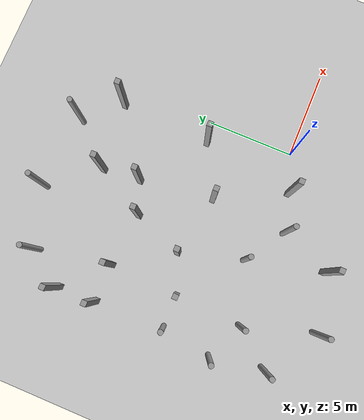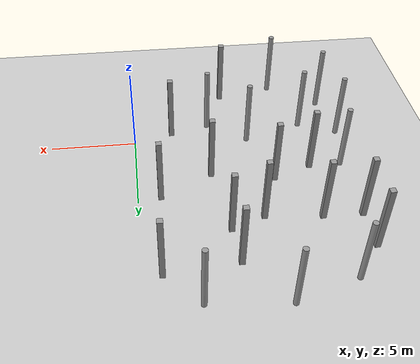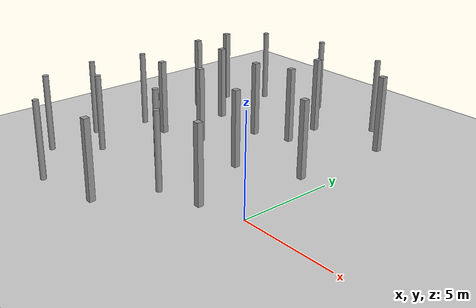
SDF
<sdf version="1.6">
 <world name="default">
  <model name="ground_plane">
   <static>1</static>
   <link name="link">
    <collision name="collision">
     <geometry><plane><normal>0 0 1</normal><size>100 100</size></plane></geometry>
    </collision>
    <visual name="visual">
     <cast_shadows>0</cast_shadows>
     <geometry><plane><normal>0 0 1</normal><size>100 100</size></plane></geometry>
     <material>
      <script><uri>file://media/materials/scripts/gazebo.material</uri><name>Gazebo/Gray</name></script>
     </material>
    </visual>
   </link>
  </model>
  <model name="unit_box">
   <link name="link">
    <inertial>
     <mass>1000</mass>
     <inertia><ixx>166.667</ixx><ixy>0</ixy><ixz>0</ixz><iyy>166.667</iyy><iyz>0</iyz><izz>166.667</izz></inertia>
    </inertial>
    <visual name="visual">
     <geometry><box><size>0.3 0.3 4</size></box></geometry>
     <material>
      <script><name>Gazebo/Grey</name><uri>file://media/materials/scripts/gazebo.material</uri></script>
      <shader type="vertex"><normal_map>__default__</normal_map></shader>
      <ambient>0.3 0.3 0.3 1</ambient>
      <diffuse>0.7 0.7 0.7 1</diffuse>
      <specular>0.01 0.01 0.01 1</specular>
      <emissive>0 0 0 1</emissive>
     </material>
    </visual>
    <collision name="collision">
     <geometry><box><size>0.3 0.3 4</size></box></geometry>
     <surface>
      <friction>
       <ode><mu>1</mu><mu2>1</mu2><fdir1>0 0 0</fdir1><slip1>0</slip1><slip2>0</slip2></ode>
       <torsional>
        <coefficient>1</coefficient>
        <patch_radius>0</patch_radius>
        <surface_radius>0</surface_radius>
        <use_patch_radius>1</use_patch_radius>
        <ode><slip>0</slip></ode>
       </torsional>
      </friction>
      <bounce><restitution_coefficient>0</restitution_coefficient><threshold>1e+06</threshold></bounce>
      <contact>
       <collide_without_contact>0</collide_without_contact>
       <collide_without_contact_bitmask>1</collide_without_contact_bitmask>
       <collide_bitmask>1</collide_bitmask>
       <ode>
        <soft_cfm>0</soft_cfm>
        <soft_erp>0.2</soft_erp>
        <kp>1e+13</kp>
        <kd>1</kd>
        <max_vel>0.01</max_vel>
        <min_depth>0</min_depth>
       </ode>
       <bullet>
        <split_impulse>1</split_impulse>
        <split_impulse_penetration_threshold>-0.01</split_impulse_penetration_threshold>
        <soft_cfm>0</soft_cfm>
        <soft_erp>0.2</soft_erp>
        <kp>1e+13</kp>
        <kd>1</kd>
       </bullet>
      </contact>
     </surface>
    </collision>
   </link>
   <static>0</static>
   <pose>-1.2673 4.71525 2 -9e-06 8e-06 -0.004085</pose>
  </model>
  <model name="unit_box_clone">
   <link name="link">
    <inertial>
     <mass>1000</mass>
     <inertia><ixx>166.667</ixx><ixy>0</ixy><ixz>0</ixz><iyy>166.667</iyy><iyz>0</iyz><izz>166.667</izz></inertia>
    </inertial>
    <visual name="visual">
     <geometry><box><size>0.3 0.3 4</size></box></geometry>
     <material>
      <script><name>Gazebo/Grey</name><uri>file://media/materials/scripts/gazebo.material</uri></script>
      <shader type="vertex"><normal_map>__default__</normal_map></shader>
      <ambient>0.3 0.3 0.3 1</ambient>
      <diffuse>0.7 0.7 0.7 1</diffuse>
      <specular>0.01 0.01 0.01 1</specular>
      <emissive>0 0 0 1</emissive>
     </material>
    </visual>
    <collision name="collision">
     <geometry><box><size>0.3 0.3 4</size></box></geometry>
     <surface>
      <friction>
       <ode><mu>1</mu><mu2>1</mu2><fdir1>0 0 0</fdir1><slip1>0</slip1><slip2>0</slip2></ode>
       <torsional>
        <coefficient>1</coefficient>
        <patch_radius>0</patch_radius>
        <surface_radius>0</surface_radius>
        <use_patch_radius>1</use_patch_radius>
        <ode><slip>0</slip></ode>
       </torsional>
      </friction>
      <bounce><restitution_coefficient>0</restitution_coefficient><threshold>1e+06</threshold></bounce>
      <contact>
       <collide_without_contact>0</collide_without_contact>
       <collide_without_contact_bitmask>1</collide_without_contact_bitmask>
       <collide_bitmask>1</collide_bitmask>
       <ode>
        <soft_cfm>0</soft_cfm>
        <soft_erp>0.2</soft_erp>
        <kp>1e+13</kp>
        <kd>1</kd>
        <max_vel>0.01</max_vel>
        <min_depth>0</min_depth>
       </ode>
       <bullet>
        <split_impulse>1</split_impulse>
        <split_impulse_penetration_threshold>-0.01</split_impulse_penetration_threshold>
        <soft_cfm>0</soft_cfm>
        <soft_erp>0.2</soft_erp>
        <kp>1e+13</kp>
        <kd>1</kd>
       </bullet>
      </contact>
     </surface>
    </collision>
   </link>
   <static>0</static>
   <pose>-2.25021 -0.681118 2.00001 4.2e-05 -5e-06 -0.00608</pose>
  </model>
  <model name="unit_box_clone_3">
   <link name="link">
    <inertial>
     <mass>1000</mass>
     <inertia><ixx>166.667</ixx><ixy>0</ixy><ixz>0</ixz><iyy>166.667</iyy><iyz>0</iyz><izz>166.667</izz></inertia>
    </inertial>
    <visual name="visual">
     <geometry><box><size>0.3 0.3 4</size></box></geometry>
     <material>
      <script><name>Gazebo/Grey</name><uri>file://media/materials/scripts/gazebo.material</uri></script>
      <shader type="vertex"><normal_map>__default__</normal_map></shader>
      <ambient>0.3 0.3 0.3 1</ambient>
      <diffuse>0.7 0.7 0.7 1</diffuse>
      <specular>0.01 0.01 0.01 1</specular>
      <emissive>0 0 0 1</emissive>
     </material>
    </visual>
    <collision name="collision">
     <geometry><box><size>0.3 0.3 4</size></box></geometry>
     <surface>
      <friction>
       <ode><mu>1</mu><mu2>1</mu2><fdir1>0 0 0</fdir1><slip1>0</slip1><slip2>0</slip2></ode>
       <torsional>
        <coefficient>1</coefficient>
        <patch_radius>0</patch_radius>
        <surface_radius>0</surface_radius>
        <use_patch_radius>1</use_patch_radius>
        <ode><slip>0</slip></ode>
       </torsional>
      </friction>
      <bounce><restitution_coefficient>0</restitution_coefficient><threshold>1e+06</threshold></bounce>
      <contact>
       <collide_without_contact>0</collide_without_contact>
       <collide_without_contact_bitmask>1</collide_without_contact_bitmask>
       <collide_bitmask>1</collide_bitmask>
       <ode>
        <soft_cfm>0</soft_cfm>
        <soft_erp>0.2</soft_erp>
        <kp>1e+13</kp>
        <kd>1</kd>
        <max_vel>0.01</max_vel>
        <min_depth>0</min_depth>
       </ode>
       <bullet>
        <split_impulse>1</split_impulse>
        <split_impulse_penetration_threshold>-0.01</split_impulse_penetration_threshold>
        <soft_cfm>0</soft_cfm>
        <soft_erp>0.2</soft_erp>
        <kp>1e+13</kp>
        <kd>1</kd>
       </bullet>
      </contact>
     </surface>
    </collision>
   </link>
   <static>0</static>
   <pose>-9.81583 6.97363 2 -7e-06 -7e-06 -0.004361</pose>
  </model>
  <model name="unit_box_clone_4">
   <link name="link">
    <inertial>
     <mass>1000</mass>
     <inertia><ixx>166.667</ixx><ixy>0</ixy><ixz>0</ixz><iyy>166.667</iyy><iyz>0</iyz><izz>166.667</izz></inertia>
    </inertial>
    <visual name="visual">
     <geometry><box><size>0.3 0.3 4</size></box></geometry>
     <material>
      <script><name>Gazebo/Grey</name><uri>file://media/materials/scripts/gazebo.material</uri></script>
      <shader type="vertex"><normal_map>__default__</normal_map></shader>
      <ambient>0.3 0.3 0.3 1</ambient>
      <diffuse>0.7 0.7 0.7 1</diffuse>
      <specular>0.01 0.01 0.01 1</specular>
      <emissive>0 0 0 1</emissive>
     </material>
    </visual>
    <collision name="collision">
     <geometry><box><size>0.3 0.3 4</size></box></geometry>
     <surface>
      <friction>
       <ode><mu>1</mu><mu2>1</mu2><fdir1>0 0 0</fdir1><slip1>0</slip1><slip2>0</slip2></ode>
       <torsional>
        <coefficient>1</coefficient>
        <patch_radius>0</patch_radius>
        <surface_radius>0</surface_radius>
        <use_patch_radius>1</use_patch_radius>
        <ode><slip>0</slip></ode>
       </torsional>
      </friction>
      <bounce><restitution_coefficient>0</restitution_coefficient><threshold>1e+06</threshold></bounce>
      <contact>
       <collide_without_contact>0</collide_without_contact>
       <collide_without_contact_bitmask>1</collide_without_contact_bitmask>
       <collide_bitmask>1</collide_bitmask>
       <ode>
        <soft_cfm>0</soft_cfm>
        <soft_erp>0.2</soft_erp>
        <kp>1e+13</kp>
        <kd>1</kd>
        <max_vel>0.01</max_vel>
        <min_depth>0</min_depth>
       </ode>
       <bullet>
        <split_impulse>1</split_impulse>
        <split_impulse_penetration_threshold>-0.01</split_impulse_penetration_threshold>
        <soft_cfm>0</soft_cfm>
        <soft_erp>0.2</soft_erp>
        <kp>1e+13</kp>
        <kd>1</kd>
       </bullet>
      </contact>
     </surface>
    </collision>
   </link>
   <static>0</static>
   <pose>-12.064 9.20918 2 2e-06 -4e-06 -0.001687</pose>
  </model>
  <model name="unit_box_clone_8">
   <link name="link">
    <inertial>
     <mass>1000</mass>
     <inertia><ixx>166.667</ixx><ixy>0</ixy><ixz>0</ixz><iyy>166.667</iyy><iyz>0</iyz><izz>166.667</izz></inertia>
    </inertial>
    <visual name="visual">
     <geometry><box><size>0.3 0.3 4</size></box></geometry>
     <material>
      <script><name>Gazebo/Grey</name><uri>file://media/materials/scripts/gazebo.material</uri></script>
      <shader type="vertex"><normal_map>__default__</normal_map></shader>
      <ambient>0.3 0.3 0.3 1</ambient>
      <diffuse>0.7 0.7 0.7 1</diffuse>
      <specular>0.01 0.01 0.01 1</specular>
      <emissive>0 0 0 1</emissive>
     </material>
    </visual>
    <collision name="collision">
     <geometry><box><size>0.3 0.3 4</size></box></geometry>
     <surface>
      <friction>
       <ode><mu>1</mu><mu2>1</mu2><fdir1>0 0 0</fdir1><slip1>0</slip1><slip2>0</slip2></ode>
       <torsional>
        <coefficient>1</coefficient>
        <patch_radius>0</patch_radius>
        <surface_radius>0</surface_radius>
        <use_patch_radius>1</use_patch_radius>
        <ode><slip>0</slip></ode>
       </torsional>
      </friction>
      <bounce><restitution_coefficient>0</restitution_coefficient><threshold>1e+06</threshold></bounce>
      <contact>
       <collide_without_contact>0</collide_without_contact>
       <collide_without_contact_bitmask>1</collide_without_contact_bitmask>
       <collide_bitmask>1</collide_bitmask>
       <ode>
        <soft_cfm>0</soft_cfm>
        <soft_erp>0.2</soft_erp>
        <kp>1e+13</kp>
        <kd>1</kd>
        <max_vel>0.01</max_vel>
        <min_depth>0</min_depth>
       </ode>
       <bullet>
        <split_impulse>1</split_impulse>
        <split_impulse_penetration_threshold>-0.01</split_impulse_penetration_threshold>
        <soft_cfm>0</soft_cfm>
        <soft_erp>0.2</soft_erp>
        <kp>1e+13</kp>
        <kd>1</kd>
       </bullet>
      </contact>
     </surface>
    </collision>
   </link>
   <static>0</static>
   <pose>-6.6889 6.67573 2 -8e-06 -4e-06 0.003592</pose>
  </model>
  <model name="unit_box_clone_13">
   <link name="link">
    <inertial>
     <mass>1000</mass>
     <inertia><ixx>166.667</ixx><ixy>0</ixy><ixz>0</ixz><iyy>166.667</iyy><iyz>0</iyz><izz>166.667</izz></inertia>
    </inertial>
    <visual name="visual">
     <geometry><box><size>0.3 0.3 4</size></box></geometry>
     <material>
      <script><name>Gazebo/Grey</name><uri>file://media/materials/scripts/gazebo.material</uri></script>
      <shader type="vertex"><normal_map>__default__</normal_map></shader>
      <ambient>0.3 0.3 0.3 1</ambient>
      <diffuse>0.7 0.7 0.7 1</diffuse>
      <specular>0.01 0.01 0.01 1</specular>
      <emissive>0 0 0 1</emissive>
     </material>
    </visual>
    <collision name="collision">
     <geometry><box><size>0.3 0.3 4</size></box></geometry>
     <surface>
      <friction>
       <ode><mu>1</mu><mu2>1</mu2><fdir1>0 0 0</fdir1><slip1>0</slip1><slip2>0</slip2></ode>
       <torsional>
        <coefficient>1</coefficient>
        <patch_radius>0</patch_radius>
        <surface_radius>0</surface_radius>
        <use_patch_radius>1</use_patch_radius>
        <ode><slip>0</slip></ode>
       </torsional>
      </friction>
      <bounce><restitution_coefficient>0</restitution_coefficient><threshold>1e+06</threshold></bounce>
      <contact>
       <collide_without_contact>0</collide_without_contact>
       <collide_without_contact_bitmask>1</collide_without_contact_bitmask>
       <collide_bitmask>1</collide_bitmask>
       <ode>
        <soft_cfm>0</soft_cfm>
        <soft_erp>0.2</soft_erp>
        <kp>1e+13</kp>
        <kd>1</kd>
        <max_vel>0.01</max_vel>
        <min_depth>0</min_depth>
       </ode>
       <bullet>
        <split_impulse>1</split_impulse>
        <split_impulse_penetration_threshold>-0.01</split_impulse_penetration_threshold>
        <soft_cfm>0</soft_cfm>
        <soft_erp>0.2</soft_erp>
        <kp>1e+13</kp>
        <kd>1</kd>
       </bullet>
      </contact>
     </surface>
    </collision>
   </link>
   <static>0</static>
   <pose>-10.0001 3.00008 2 -1e-06 -0 -0.00029</pose>
  </model>
  <model name="unit_box_clone_14">
   <link name="link">
    <inertial>
     <mass>1000</mass>
     <inertia><ixx>166.667</ixx><ixy>0</ixy><ixz>0</ixz><iyy>166.667</iyy><iyz>0</iyz><izz>166.667</izz></inertia>
    </inertial>
    <visual name="visual">
     <geometry><box><size>0.3 0.3 4</size></box></geometry>
     <material>
      <script><name>Gazebo/Grey</name><uri>file://media/materials/scripts/gazebo.material</uri></script>
      <shader type="vertex"><normal_map>__default__</normal_map></shader>
      <ambient>0.3 0.3 0.3 1</ambient>
      <diffuse>0.7 0.7 0.7 1</diffuse>
      <specular>0.01 0.01 0.01 1</specular>
      <emissive>0 0 0 1</emissive>
     </material>
    </visual>
    <collision name="collision">
     <geometry><box><size>0.3 0.3 4</size></box></geometry>
     <surface>
      <friction>
       <ode><mu>1</mu><mu2>1</mu2><fdir1>0 0 0</fdir1><slip1>0</slip1><slip2>0</slip2></ode>
       <torsional>
        <coefficient>1</coefficient>
        <patch_radius>0</patch_radius>
        <surface_radius>0</surface_radius>
        <use_patch_radius>1</use_patch_radius>
        <ode><slip>0</slip></ode>
       </torsional>
      </friction>
      <bounce><restitution_coefficient>0</restitution_coefficient><threshold>1e+06</threshold></bounce>
      <contact>
       <collide_without_contact>0</collide_without_contact>
       <collide_without_contact_bitmask>1</collide_without_contact_bitmask>
       <collide_bitmask>1</collide_bitmask>
       <ode>
        <soft_cfm>0</soft_cfm>
        <soft_erp>0.2</soft_erp>
        <kp>1e+13</kp>
        <kd>1</kd>
        <max_vel>0.01</max_vel>
        <min_depth>0</min_depth>
       </ode>
       <bullet>
        <split_impulse>1</split_impulse>
        <split_impulse_penetration_threshold>-0.01</split_impulse_penetration_threshold>
        <soft_cfm>0</soft_cfm>
        <soft_erp>0.2</soft_erp>
        <kp>1e+13</kp>
        <kd>1</kd>
       </bullet>
      </contact>
     </surface>
    </collision>
   </link>
   <static>0</static>
   <pose>-11.9999 7.00011 2 0 -1e-06 0.00014</pose>
  </model>
  <model name="unit_box_clone_22">
   <link name="link">
    <inertial>
     <mass>1000</mass>
     <inertia><ixx>166.667</ixx><ixy>0</ixy><ixz>0</ixz><iyy>166.667</iyy><iyz>0</iyz><izz>166.667</izz></inertia>
    </inertial>
    <visual name="visual">
     <geometry><box><size>0.3 0.3 4</size></box></geometry>
     <material>
      <script><name>Gazebo/Grey</name><uri>file://media/materials/scripts/gazebo.material</uri></script>
      <shader type="vertex"><normal_map>__default__</normal_map></shader>
      <ambient>0.3 0.3 0.3 1</ambient>
      <diffuse>0.7 0.7 0.7 1</diffuse>
      <specular>0.01 0.01 0.01 1</specular>
      <emissive>0 0 0 1</emissive>
     </material>
    </visual>
    <collision name="collision">
     <geometry><box><size>0.3 0.3 4</size></box></geometry>
     <surface>
      <friction>
       <ode><mu>1</mu><mu2>1</mu2><fdir1>0 0 0</fdir1><slip1>0</slip1><slip2>0</slip2></ode>
       <torsional>
        <coefficient>1</coefficient>
        <patch_radius>0</patch_radius>
        <surface_radius>0</surface_radius>
        <use_patch_radius>1</use_patch_radius>
        <ode><slip>0</slip></ode>
       </torsional>
      </friction>
      <bounce><restitution_coefficient>0</restitution_coefficient><threshold>1e+06</threshold></bounce>
      <contact>
       <collide_without_contact>0</collide_without_contact>
       <collide_without_contact_bitmask>1</collide_without_contact_bitmask>
       <collide_bitmask>1</collide_bitmask>
       <ode>
        <soft_cfm>0</soft_cfm>
        <soft_erp>0.2</soft_erp>
        <kp>1e+13</kp>
        <kd>1</kd>
        <max_vel>0.01</max_vel>
        <min_depth>0</min_depth>
       </ode>
       <bullet>
        <split_impulse>1</split_impulse>
        <split_impulse_penetration_threshold>-0.01</split_impulse_penetration_threshold>
        <soft_cfm>0</soft_cfm>
        <soft_erp>0.2</soft_erp>
        <kp>1e+13</kp>
        <kd>1</kd>
       </bullet>
      </contact>
     </surface>
    </collision>
   </link>
   <static>0</static>
   <pose>-0.99992 9.99994 2 3e-06 -2.5e-05 -0.007767</pose>
  </model>
  <model name="unit_box_clone_23">
   <link name="link">
    <inertial>
     <mass>1000</mass>
     <inertia><ixx>166.667</ixx><ixy>0</ixy><ixz>0</ixz><iyy>166.667</iyy><iyz>0</iyz><izz>166.667</izz></inertia>
    </inertial>
    <visual name="visual">
     <geometry><box><size>0.3 0.3 4</size></box></geometry>
     <material>
      <script><name>Gazebo/Grey</name><uri>file://media/materials/scripts/gazebo.material</uri></script>
      <shader type="vertex"><normal_map>__default__</normal_map></shader>
      <ambient>0.3 0.3 0.3 1</ambient>
      <diffuse>0.7 0.7 0.7 1</diffuse>
      <specular>0.01 0.01 0.01 1</specular>
      <emissive>0 0 0 1</emissive>
     </material>
    </visual>
    <collision name="collision">
     <geometry><box><size>0.3 0.3 4</size></box></geometry>
     <surface>
      <friction>
       <ode><mu>1</mu><mu2>1</mu2><fdir1>0 0 0</fdir1><slip1>0</slip1><slip2>0</slip2></ode>
       <torsional>
        <coefficient>1</coefficient>
        <patch_radius>0</patch_radius>
        <surface_radius>0</surface_radius>
        <use_patch_radius>1</use_patch_radius>
        <ode><slip>0</slip></ode>
       </torsional>
      </friction>
      <bounce><restitution_coefficient>0</restitution_coefficient><threshold>1e+06</threshold></bounce>
      <contact>
       <collide_without_contact>0</collide_without_contact>
       <collide_without_contact_bitmask>1</collide_without_contact_bitmask>
       <collide_bitmask>1</collide_bitmask>
       <ode>
        <soft_cfm>0</soft_cfm>
        <soft_erp>0.2</soft_erp>
        <kp>1e+13</kp>
        <kd>1</kd>
        <max_vel>0.01</max_vel>
        <min_depth>0</min_depth>
       </ode>
       <bullet>
        <split_impulse>1</split_impulse>
        <split_impulse_penetration_threshold>-0.01</split_impulse_penetration_threshold>
        <soft_cfm>0</soft_cfm>
        <soft_erp>0.2</soft_erp>
        <kp>1e+13</kp>
        <kd>1</kd>
       </bullet>
      </contact>
     </surface>
    </collision>
   </link>
   <static>0</static>
   <pose>-5.00228 9.59191 2 -7e-06 -6e-06 -0.000148</pose>
  </model>
  <model name="unit_box_clone_24">
   <link name="link">
    <inertial>
     <mass>1000</mass>
     <inertia><ixx>166.667</ixx><ixy>0</ixy><ixz>0</ixz><iyy>166.667</iyy><iyz>0</iyz><izz>166.667</izz></inertia>
    </inertial>
    <visual name="visual">
     <geometry><box><size>0.3 0.3 4</size></box></geometry>
     <material>
      <script><name>Gazebo/Grey</name><uri>file://media/materials/scripts/gazebo.material</uri></script>
      <shader type="vertex"><normal_map>__default__</normal_map></shader>
      <ambient>0.3 0.3 0.3 1</ambient>
      <diffuse>0.7 0.7 0.7 1</diffuse>
      <specular>0.01 0.01 0.01 1</specular>
      <emissive>0 0 0 1</emissive>
     </material>
    </visual>
    <collision name="collision">
     <geometry><box><size>0.3 0.3 4</size></box></geometry>
     <surface>
      <friction>
       <ode><mu>1</mu><mu2>1</mu2><fdir1>0 0 0</fdir1><slip1>0</slip1><slip2>0</slip2></ode>
       <torsional>
        <coefficient>1</coefficient>
        <patch_radius>0</patch_radius>
        <surface_radius>0</surface_radius>
        <use_patch_radius>1</use_patch_radius>
        <ode><slip>0</slip></ode>
       </torsional>
      </friction>
      <bounce><restitution_coefficient>0</restitution_coefficient><threshold>1e+06</threshold></bounce>
      <contact>
       <collide_without_contact>0</collide_without_contact>
       <collide_without_contact_bitmask>1</collide_without_contact_bitmask>
       <collide_bitmask>1</collide_bitmask>
       <ode>
        <soft_cfm>0</soft_cfm>
        <soft_erp>0.2</soft_erp>
        <kp>1e+13</kp>
        <kd>1</kd>
        <max_vel>0.01</max_vel>
        <min_depth>0</min_depth>
       </ode>
       <bullet>
        <split_impulse>1</split_impulse>
        <split_impulse_penetration_threshold>-0.01</split_impulse_penetration_threshold>
        <soft_cfm>0</soft_cfm>
        <soft_erp>0.2</soft_erp>
        <kp>1e+13</kp>
        <kd>1</kd>
       </bullet>
      </contact>
     </surface>
    </collision>
   </link>
   <static>0</static>
   <pose>-4.80942 7.40677 2.00001 -6.2e-05 -1e-06 0.003403</pose>
  </model>
  <model name="unit_box_clone_28">
   <link name="link">
    <inertial>
     <mass>1000</mass>
     <inertia><ixx>166.667</ixx><ixy>0</ixy><ixz>0</ixz><iyy>166.667</iyy><iyz>0</iyz><izz>166.667</izz></inertia>
    </inertial>
    <visual name="visual">
     <geometry><box><size>0.3 0.3 4</size></box></geometry>
     <material>
      <script><name>Gazebo/Grey</name><uri>file://media/materials/scripts/gazebo.material</uri></script>
      <shader type="vertex"><normal_map>__default__</normal_map></shader>
      <ambient>0.3 0.3 0.3 1</ambient>
      <diffuse>0.7 0.7 0.7 1</diffuse>
      <specular>0.01 0.01 0.01 1</specular>
      <emissive>0 0 0 1</emissive>
     </material>
    </visual>
    <collision name="collision">
     <geometry><box><size>0.3 0.3 4</size></box></geometry>
     <surface>
      <friction>
       <ode><mu>1</mu><mu2>1</mu2><fdir1>0 0 0</fdir1><slip1>0</slip1><slip2>0</slip2></ode>
       <torsional>
        <coefficient>1</coefficient>
        <patch_radius>0</patch_radius>
        <surface_radius>0</surface_radius>
        <use_patch_radius>1</use_patch_radius>
        <ode><slip>0</slip></ode>
       </torsional>
      </friction>
      <bounce><restitution_coefficient>0</restitution_coefficient><threshold>1e+06</threshold></bounce>
      <contact>
       <collide_without_contact>0</collide_without_contact>
       <collide_without_contact_bitmask>1</collide_without_contact_bitmask>
       <collide_bitmask>1</collide_bitmask>
       <ode>
        <soft_cfm>0</soft_cfm>
        <soft_erp>0.2</soft_erp>
        <kp>1e+13</kp>
        <kd>1</kd>
        <max_vel>0.01</max_vel>
        <min_depth>0</min_depth>
       </ode>
       <bullet>
        <split_impulse>1</split_impulse>
        <split_impulse_penetration_threshold>-0.01</split_impulse_penetration_threshold>
        <soft_cfm>0</soft_cfm>
        <soft_erp>0.2</soft_erp>
        <kp>1e+13</kp>
        <kd>1</kd>
       </bullet>
      </contact>
     </surface>
    </collision>
   </link>
   <static>0</static>
   <pose>-7.80117 3.8248 2 -4e-06 2e-06 -0.004554</pose>
  </model>
  <model name="unit_cylinder_clone_1_clone_1">
   <link name="link">
    <inertial>
     <mass>1000</mass>
     <inertia><ixx>145.833</ixx><ixy>0</ixy><ixz>0</ixz><iyy>145.833</iyy><iyz>0</iyz><izz>125</izz></inertia>
    </inertial>
    <visual name="visual">
     <geometry><cylinder><radius>0.15</radius><length>4</length></cylinder></geometry>
     <material>
      <script><name>Gazebo/Grey</name><uri>file://media/materials/scripts/gazebo.material</uri></script>
      <shader type="vertex"><normal_map>__default__</normal_map></shader>
      <ambient>0.3 0.3 0.3 1</ambient>
      <diffuse>0.7 0.7 0.7 1</diffuse>
      <specular>0.01 0.01 0.01 1</specular>
      <emissive>0 0 0 1</emissive>
     </material>
    </visual>
    <collision name="collision">
     <geometry><cylinder><radius>0.15</radius><length>4</length></cylinder></geometry>
     <surface>
      <friction>
       <ode><mu>1</mu><mu2>1</mu2><fdir1>0 0 0</fdir1><slip1>0</slip1><slip2>0</slip2></ode>
       <torsional>
        <coefficient>1</coefficient>
        <patch_radius>0</patch_radius>
        <surface_radius>0</surface_radius>
        <use_patch_radius>1</use_patch_radius>
        <ode><slip>0</slip></ode>
       </torsional>
      </friction>
      <bounce><restitution_coefficient>0</restitution_coefficient><threshold>1e+06</threshold></bounce>
      <contact>
       <collide_without_contact>0</collide_without_contact>
       <collide_without_contact_bitmask>1</collide_without_contact_bitmask>
       <collide_bitmask>1</collide_bitmask>
       <ode>
        <soft_cfm>0</soft_cfm>
        <soft_erp>0.2</soft_erp>
        <kp>1e+13</kp>
        <kd>1</kd>
        <max_vel>0.01</max_vel>
        <min_depth>0</min_depth>
       </ode>
       <bullet>
        <split_impulse>1</split_impulse>
        <split_impulse_penetration_threshold>-0.01</split_impulse_penetration_threshold>
        <soft_cfm>0</soft_cfm>
        <soft_erp>0.2</soft_erp>
        <kp>1e+13</kp>
        <kd>1</kd>
       </bullet>
      </contact>
     </surface>
    </collision>
   </link>
   <static>0</static>
   <pose>-11.8331 -2.81075 1.99995 -0.000271 -2.8e-05 -0.895331</pose>
  </model>
  <model name="unit_cylinder_clone_1_clone_4">
   <link name="link">
    <inertial>
     <mass>1000</mass>
     <inertia><ixx>145.833</ixx><ixy>0</ixy><ixz>0</ixz><iyy>145.833</iyy><iyz>0</iyz><izz>125</izz></inertia>
    </inertial>
    <visual name="visual">
     <geometry><cylinder><radius>0.15</radius><length>4</length></cylinder></geometry>
     <material>
      <script><name>Gazebo/Grey</name><uri>file://media/materials/scripts/gazebo.material</uri></script>
      <shader type="vertex"><normal_map>__default__</normal_map></shader>
      <ambient>0.3 0.3 0.3 1</ambient>
      <diffuse>0.7 0.7 0.7 1</diffuse>
      <specular>0.01 0.01 0.01 1</specular>
      <emissive>0 0 0 1</emissive>
     </material>
    </visual>
    <collision name="collision">
     <geometry><cylinder><radius>0.15</radius><length>4</length></cylinder></geometry>
     <surface>
      <friction>
       <ode><mu>1</mu><mu2>1</mu2><fdir1>0 0 0</fdir1><slip1>0</slip1><slip2>0</slip2></ode>
       <torsional>
        <coefficient>1</coefficient>
        <patch_radius>0</patch_radius>
        <surface_radius>0</surface_radius>
        <use_patch_radius>1</use_patch_radius>
        <ode><slip>0</slip></ode>
       </torsional>
      </friction>
      <bounce><restitution_coefficient>0</restitution_coefficient><threshold>1e+06</threshold></bounce>
      <contact>
       <collide_without_contact>0</collide_without_contact>
       <collide_without_contact_bitmask>1</collide_without_contact_bitmask>
       <collide_bitmask>1</collide_bitmask>
       <ode>
        <soft_cfm>0</soft_cfm>
        <soft_erp>0.2</soft_erp>
        <kp>1e+13</kp>
        <kd>1</kd>
        <max_vel>0.01</max_vel>
        <min_depth>0</min_depth>
       </ode>
       <bullet>
        <split_impulse>1</split_impulse>
        <split_impulse_penetration_threshold>-0.01</split_impulse_penetration_threshold>
        <soft_cfm>0</soft_cfm>
        <soft_erp>0.2</soft_erp>
        <kp>1e+13</kp>
        <kd>1</kd>
       </bullet>
      </contact>
     </surface>
    </collision>
   </link>
   <static>0</static>
   <pose>-8.98869 -4.76176 1.99995 -0.000271 -2.8e-05 -0.897295</pose>
  </model>
  <model name="unit_cylinder_clone_1_clone_11">
   <link name="link">
    <inertial>
     <mass>1000</mass>
     <inertia><ixx>145.833</ixx><ixy>0</ixy><ixz>0</ixz><iyy>145.833</iyy><iyz>0</iyz><izz>125</izz></inertia>
    </inertial>
    <visual name="visual">
     <geometry><cylinder><radius>0.15</radius><length>4</length></cylinder></geometry>
     <material>
      <script><name>Gazebo/Grey</name><uri>file://media/materials/scripts/gazebo.material</uri></script>
      <shader type="vertex"><normal_map>__default__</normal_map></shader>
      <ambient>0.3 0.3 0.3 1</ambient>
      <diffuse>0.7 0.7 0.7 1</diffuse>
      <specular>0.01 0.01 0.01 1</specular>
      <emissive>0 0 0 1</emissive>
     </material>
    </visual>
    <collision name="collision">
     <geometry><cylinder><radius>0.15</radius><length>4</length></cylinder></geometry>
     <surface>
      <friction>
       <ode><mu>1</mu><mu2>1</mu2><fdir1>0 0 0</fdir1><slip1>0</slip1><slip2>0</slip2></ode>
       <torsional>
        <coefficient>1</coefficient>
        <patch_radius>0</patch_radius>
        <surface_radius>0</surface_radius>
        <use_patch_radius>1</use_patch_radius>
        <ode><slip>0</slip></ode>
       </torsional>
      </friction>
      <bounce><restitution_coefficient>0</restitution_coefficient><threshold>1e+06</threshold></bounce>
      <contact>
       <collide_without_contact>0</collide_without_contact>
       <collide_without_contact_bitmask>1</collide_without_contact_bitmask>
       <collide_bitmask>1</collide_bitmask>
       <ode>
        <soft_cfm>0</soft_cfm>
        <soft_erp>0.2</soft_erp>
        <kp>1e+13</kp>
        <kd>1</kd>
        <max_vel>0.01</max_vel>
        <min_depth>0</min_depth>
       </ode>
       <bullet>
        <split_impulse>1</split_impulse>
        <split_impulse_penetration_threshold>-0.01</split_impulse_penetration_threshold>
        <soft_cfm>0</soft_cfm>
        <soft_erp>0.2</soft_erp>
        <kp>1e+13</kp>
        <kd>1</kd>
       </bullet>
      </contact>
     </surface>
    </collision>
   </link>
   <static>0</static>
   <pose>-4.49175 -1.24197 1.99995 -0.000271 -2.6e-05 -0.889255</pose>
  </model>
  <model name="unit_cylinder_clone_1_clone_12">
   <link name="link">
    <inertial>
     <mass>1000</mass>
     <inertia><ixx>145.833</ixx><ixy>0</ixy><ixz>0</ixz><iyy>145.833</iyy><iyz>0</iyz><izz>125</izz></inertia>
    </inertial>
    <visual name="visual">
     <geometry><cylinder><radius>0.15</radius><length>4</length></cylinder></geometry>
     <material>
      <script><name>Gazebo/Grey</name><uri>file://media/materials/scripts/gazebo.material</uri></script>
      <shader type="vertex"><normal_map>__default__</normal_map></shader>
      <ambient>0.3 0.3 0.3 1</ambient>
      <diffuse>0.7 0.7 0.7 1</diffuse>
      <specular>0.01 0.01 0.01 1</specular>
      <emissive>0 0 0 1</emissive>
     </material>
    </visual>
    <collision name="collision">
     <geometry><cylinder><radius>0.15</radius><length>4</length></cylinder></geometry>
     <surface>
      <friction>
       <ode><mu>1</mu><mu2>1</mu2><fdir1>0 0 0</fdir1><slip1>0</slip1><slip2>0</slip2></ode>
       <torsional>
        <coefficient>1</coefficient>
        <patch_radius>0</patch_radius>
        <surface_radius>0</surface_radius>
        <use_patch_radius>1</use_patch_radius>
        <ode><slip>0</slip></ode>
       </torsional>
      </friction>
      <bounce><restitution_coefficient>0</restitution_coefficient><threshold>1e+06</threshold></bounce>
      <contact>
       <collide_without_contact>0</collide_without_contact>
       <collide_without_contact_bitmask>1</collide_without_contact_bitmask>
       <collide_bitmask>1</collide_bitmask>
       <ode>
        <soft_cfm>0</soft_cfm>
        <soft_erp>0.2</soft_erp>
        <kp>1e+13</kp>
        <kd>1</kd>
        <max_vel>0.01</max_vel>
        <min_depth>0</min_depth>
       </ode>
       <bullet>
        <split_impulse>1</split_impulse>
        <split_impulse_penetration_threshold>-0.01</split_impulse_penetration_threshold>
        <soft_cfm>0</soft_cfm>
        <soft_erp>0.2</soft_erp>
        <kp>1e+13</kp>
        <kd>1</kd>
       </bullet>
      </contact>
     </surface>
    </collision>
   </link>
   <static>0</static>
   <pose>-6.76413 0.28393 1.99995 -0.000271 -2.7e-05 -0.89425</pose>
  </model>
  <model name="unit_cylinder_clone_1_clone_14">
   <link name="link">
    <inertial>
     <mass>1000</mass>
     <inertia><ixx>145.833</ixx><ixy>0</ixy><ixz>0</ixz><iyy>145.833</iyy><iyz>0</iyz><izz>125</izz></inertia>
    </inertial>
    <visual name="visual">
     <geometry><cylinder><radius>0.15</radius><length>4</length></cylinder></geometry>
     <material>
      <script><name>Gazebo/Grey</name><uri>file://media/materials/scripts/gazebo.material</uri></script>
      <shader type="vertex"><normal_map>__default__</normal_map></shader>
      <ambient>0.3 0.3 0.3 1</ambient>
      <diffuse>0.7 0.7 0.7 1</diffuse>
      <specular>0.01 0.01 0.01 1</specular>
      <emissive>0 0 0 1</emissive>
     </material>
    </visual>
    <collision name="collision">
     <geometry><cylinder><radius>0.15</radius><length>4</length></cylinder></geometry>
     <surface>
      <friction>
       <ode><mu>1</mu><mu2>1</mu2><fdir1>0 0 0</fdir1><slip1>0</slip1><slip2>0</slip2></ode>
       <torsional>
        <coefficient>1</coefficient>
        <patch_radius>0</patch_radius>
        <surface_radius>0</surface_radius>
        <use_patch_radius>1</use_patch_radius>
        <ode><slip>0</slip></ode>
       </torsional>
      </friction>
      <bounce><restitution_coefficient>0</restitution_coefficient><threshold>1e+06</threshold></bounce>
      <contact>
       <collide_without_contact>0</collide_without_contact>
       <collide_without_contact_bitmask>1</collide_without_contact_bitmask>
       <collide_bitmask>1</collide_bitmask>
       <ode>
        <soft_cfm>0</soft_cfm>
        <soft_erp>0.2</soft_erp>
        <kp>1e+13</kp>
        <kd>1</kd>
        <max_vel>0.01</max_vel>
        <min_depth>0</min_depth>
       </ode>
       <bullet>
        <split_impulse>1</split_impulse>
        <split_impulse_penetration_threshold>-0.01</split_impulse_penetration_threshold>
        <soft_cfm>0</soft_cfm>
        <soft_erp>0.2</soft_erp>
        <kp>1e+13</kp>
        <kd>1</kd>
       </bullet>
      </contact>
     </surface>
    </collision>
   </link>
   <static>0</static>
   <pose>-10.1964 -0.794181 1.99995 -0.000271 -2.8e-05 -0.897285</pose>
  </model>
  <model name="unit_cylinder_clone_1_clone_7_clone_0">
   <link name="link">
    <inertial>
     <mass>1000</mass>
     <inertia><ixx>145.833</ixx><ixy>0</ixy><ixz>0</ixz><iyy>145.833</iyy><iyz>0</iyz><izz>125</izz></inertia>
    </inertial>
    <visual name="visual">
     <geometry><cylinder><radius>0.15</radius><length>4</length></cylinder></geometry>
     <material>
      <script><name>Gazebo/Grey</name><uri>file://media/materials/scripts/gazebo.material</uri></script>
      <shader type="vertex"><normal_map>__default__</normal_map></shader>
      <ambient>0.3 0.3 0.3 1</ambient>
      <diffuse>0.7 0.7 0.7 1</diffuse>
      <specular>0.01 0.01 0.01 1</specular>
      <emissive>0 0 0 1</emissive>
     </material>
    </visual>
    <collision name="collision">
     <geometry><cylinder><radius>0.15</radius><length>4</length></cylinder></geometry>
     <surface>
      <friction>
       <ode><mu>1</mu><mu2>1</mu2><fdir1>0 0 0</fdir1><slip1>0</slip1><slip2>0</slip2></ode>
       <torsional>
        <coefficient>1</coefficient>
        <patch_radius>0</patch_radius>
        <surface_radius>0</surface_radius>
        <use_patch_radius>1</use_patch_radius>
        <ode><slip>0</slip></ode>
       </torsional>
      </friction>
      <bounce><restitution_coefficient>0</restitution_coefficient><threshold>1e+06</threshold></bounce>
      <contact>
       <collide_without_contact>0</collide_without_contact>
       <collide_without_contact_bitmask>1</collide_without_contact_bitmask>
       <collide_bitmask>1</collide_bitmask>
       <ode>
        <soft_cfm>0</soft_cfm>
        <soft_erp>0.2</soft_erp>
        <kp>1e+13</kp>
        <kd>1</kd>
        <max_vel>0.01</max_vel>
        <min_depth>0</min_depth>
       </ode>
       <bullet>
        <split_impulse>1</split_impulse>
        <split_impulse_penetration_threshold>-0.01</split_impulse_penetration_threshold>
        <soft_cfm>0</soft_cfm>
        <soft_erp>0.2</soft_erp>
        <kp>1e+13</kp>
        <kd>1</kd>
       </bullet>
      </contact>
     </surface>
    </collision>
   </link>
   <static>0</static>
   <pose>-7.15539 12.244 1.99995 -0.000271 -2.7e-05 -0.894113</pose>
  </model>
  <model name="unit_cylinder_clone_1_clone_7_clone_2">
   <link name="link">
    <inertial>
     <mass>1000</mass>
     <inertia><ixx>145.833</ixx><ixy>0</ixy><ixz>0</ixz><iyy>145.833</iyy><iyz>0</iyz><izz>125</izz></inertia>
    </inertial>
    <visual name="visual">
     <geometry><cylinder><radius>0.15</radius><length>4</length></cylinder></geometry>
     <material>
      <script><name>Gazebo/Grey</name><uri>file://media/materials/scripts/gazebo.material</uri></script>
      <shader type="vertex"><normal_map>__default__</normal_map></shader>
      <ambient>0.3 0.3 0.3 1</ambient>
      <diffuse>0.7 0.7 0.7 1</diffuse>
      <specular>0.01 0.01 0.01 1</specular>
      <emissive>0 0 0 1</emissive>
     </material>
    </visual>
    <collision name="collision">
     <geometry><cylinder><radius>0.15</radius><length>4</length></cylinder></geometry>
     <surface>
      <friction>
       <ode><mu>1</mu><mu2>1</mu2><fdir1>0 0 0</fdir1><slip1>0</slip1><slip2>0</slip2></ode>
       <torsional>
        <coefficient>1</coefficient>
        <patch_radius>0</patch_radius>
        <surface_radius>0</surface_radius>
        <use_patch_radius>1</use_patch_radius>
        <ode><slip>0</slip></ode>
       </torsional>
      </friction>
      <bounce><restitution_coefficient>0</restitution_coefficient><threshold>1e+06</threshold></bounce>
      <contact>
       <collide_without_contact>0</collide_without_contact>
       <collide_without_contact_bitmask>1</collide_without_contact_bitmask>
       <collide_bitmask>1</collide_bitmask>
       <ode>
        <soft_cfm>0</soft_cfm>
        <soft_erp>0.2</soft_erp>
        <kp>1e+13</kp>
        <kd>1</kd>
        <max_vel>0.01</max_vel>
        <min_depth>0</min_depth>
       </ode>
       <bullet>
        <split_impulse>1</split_impulse>
        <split_impulse_penetration_threshold>-0.01</split_impulse_penetration_threshold>
        <soft_cfm>0</soft_cfm>
        <soft_erp>0.2</soft_erp>
        <kp>1e+13</kp>
        <kd>1</kd>
       </bullet>
      </contact>
     </surface>
    </collision>
   </link>
   <static>0</static>
   <pose>-2.83412 11.8811 1.99995 -0.000271 -2.7e-05 -0.894113</pose>
  </model>
  <model name="unit_cylinder_clone_1_clone_7_clone_3">
   <link name="link">
    <inertial>
     <mass>1000</mass>
     <inertia><ixx>145.833</ixx><ixy>0</ixy><ixz>0</ixz><iyy>145.833</iyy><iyz>0</iyz><izz>125</izz></inertia>
    </inertial>
    <visual name="visual">
     <geometry><cylinder><radius>0.15</radius><length>4</length></cylinder></geometry>
     <material>
      <script><name>Gazebo/Grey</name><uri>file://media/materials/scripts/gazebo.material</uri></script>
      <shader type="vertex"><normal_map>__default__</normal_map></shader>
      <ambient>0.3 0.3 0.3 1</ambient>
      <diffuse>0.7 0.7 0.7 1</diffuse>
      <specular>0.01 0.01 0.01 1</specular>
      <emissive>0 0 0 1</emissive>
     </material>
    </visual>
    <collision name="collision">
     <geometry><cylinder><radius>0.15</radius><length>4</length></cylinder></geometry>
     <surface>
      <friction>
       <ode><mu>1</mu><mu2>1</mu2><fdir1>0 0 0</fdir1><slip1>0</slip1><slip2>0</slip2></ode>
       <torsional>
        <coefficient>1</coefficient>
        <patch_radius>0</patch_radius>
        <surface_radius>0</surface_radius>
        <use_patch_radius>1</use_patch_radius>
        <ode><slip>0</slip></ode>
       </torsional>
      </friction>
      <bounce><restitution_coefficient>0</restitution_coefficient><threshold>1e+06</threshold></bounce>
      <contact>
       <collide_without_contact>0</collide_without_contact>
       <collide_without_contact_bitmask>1</collide_without_contact_bitmask>
       <collide_bitmask>1</collide_bitmask>
       <ode>
        <soft_cfm>0</soft_cfm>
        <soft_erp>0.2</soft_erp>
        <kp>1e+13</kp>
        <kd>1</kd>
        <max_vel>0.01</max_vel>
        <min_depth>0</min_depth>
       </ode>
       <bullet>
        <split_impulse>1</split_impulse>
        <split_impulse_penetration_threshold>-0.01</split_impulse_penetration_threshold>
        <soft_cfm>0</soft_cfm>
        <soft_erp>0.2</soft_erp>
        <kp>1e+13</kp>
        <kd>1</kd>
       </bullet>
      </contact>
     </surface>
    </collision>
   </link>
   <static>0</static>
   <pose>-12.3549 0.135359 1.99995 -0.000271 -2.7e-05 -0.891666</pose>
  </model>
  <model name="unit_cylinder_clone_1_clone_7_clone_5">
   <link name="link">
    <inertial>
     <mass>1000</mass>
     <inertia><ixx>145.833</ixx><ixy>0</ixy><ixz>0</ixz><iyy>145.833</iyy><iyz>0</iyz><izz>125</izz></inertia>
    </inertial>
    <visual name="visual">
     <geometry><cylinder><radius>0.15</radius><length>4</length></cylinder></geometry>
     <material>
      <script><name>Gazebo/Grey</name><uri>file://media/materials/scripts/gazebo.material</uri></script>
      <shader type="vertex"><normal_map>__default__</normal_map></shader>
      <ambient>0.3 0.3 0.3 1</ambient>
      <diffuse>0.7 0.7 0.7 1</diffuse>
      <specular>0.01 0.01 0.01 1</specular>
      <emissive>0 0 0 1</emissive>
     </material>
    </visual>
    <collision name="collision">
     <geometry><cylinder><radius>0.15</radius><length>4</length></cylinder></geometry>
     <surface>
      <friction>
       <ode><mu>1</mu><mu2>1</mu2><fdir1>0 0 0</fdir1><slip1>0</slip1><slip2>0</slip2></ode>
       <torsional>
        <coefficient>1</coefficient>
        <patch_radius>0</patch_radius>
        <surface_radius>0</surface_radius>
        <use_patch_radius>1</use_patch_radius>
        <ode><slip>0</slip></ode>
       </torsional>
      </friction>
      <bounce><restitution_coefficient>0</restitution_coefficient><threshold>1e+06</threshold></bounce>
      <contact>
       <collide_without_contact>0</collide_without_contact>
       <collide_without_contact_bitmask>1</collide_without_contact_bitmask>
       <collide_bitmask>1</collide_bitmask>
       <ode>
        <soft_cfm>0</soft_cfm>
        <soft_erp>0.2</soft_erp>
        <kp>1e+13</kp>
        <kd>1</kd>
        <max_vel>0.01</max_vel>
        <min_depth>0</min_depth>
       </ode>
       <bullet>
        <split_impulse>1</split_impulse>
        <split_impulse_penetration_threshold>-0.01</split_impulse_penetration_threshold>
        <soft_cfm>0</soft_cfm>
        <soft_erp>0.2</soft_erp>
        <kp>1e+13</kp>
        <kd>1</kd>
       </bullet>
      </contact>
     </surface>
    </collision>
   </link>
   <static>0</static>
   <pose>-10.6126 11.1157 1.99995 -0.000271 -2.7e-05 -0.894113</pose>
  </model>
  <model name="unit_cylinder_clone_1_clone_7_clone_8">
   <link name="link">
    <inertial>
     <mass>1000</mass>
     <inertia><ixx>145.833</ixx><ixy>0</ixy><ixz>0</ixz><iyy>145.833</iyy><iyz>0</iyz><izz>125</izz></inertia>
    </inertial>
    <visual name="visual">
     <geometry><cylinder><radius>0.15</radius><length>4</length></cylinder></geometry>
     <material>
      <script><name>Gazebo/Grey</name><uri>file://media/materials/scripts/gazebo.material</uri></script>
      <shader type="vertex"><normal_map>__default__</normal_map></shader>
      <ambient>0.3 0.3 0.3 1</ambient>
      <diffuse>0.7 0.7 0.7 1</diffuse>
      <specular>0.01 0.01 0.01 1</specular>
      <emissive>0 0 0 1</emissive>
     </material>
    </visual>
    <collision name="collision">
     <geometry><cylinder><radius>0.15</radius><length>4</length></cylinder></geometry>
     <surface>
      <friction>
       <ode><mu>1</mu><mu2>1</mu2><fdir1>0 0 0</fdir1><slip1>0</slip1><slip2>0</slip2></ode>
       <torsional>
        <coefficient>1</coefficient>
        <patch_radius>0</patch_radius>
        <surface_radius>0</surface_radius>
        <use_patch_radius>1</use_patch_radius>
        <ode><slip>0</slip></ode>
       </torsional>
      </friction>
      <bounce><restitution_coefficient>0</restitution_coefficient><threshold>1e+06</threshold></bounce>
      <contact>
       <collide_without_contact>0</collide_without_contact>
       <collide_without_contact_bitmask>1</collide_without_contact_bitmask>
       <collide_bitmask>1</collide_bitmask>
       <ode>
        <soft_cfm>0</soft_cfm>
        <soft_erp>0.2</soft_erp>
        <kp>1e+13</kp>
        <kd>1</kd>
        <max_vel>0.01</max_vel>
        <min_depth>0</min_depth>
       </ode>
       <bullet>
        <split_impulse>1</split_impulse>
        <split_impulse_penetration_threshold>-0.01</split_impulse_penetration_threshold>
        <soft_cfm>0</soft_cfm>
        <soft_erp>0.2</soft_erp>
        <kp>1e+13</kp>
        <kd>1</kd>
       </bullet>
      </contact>
     </surface>
    </collision>
   </link>
   <static>0</static>
   <pose>-11.8447 3.00013 1.99995 -0.000271 -2.7e-05 -0.894113</pose>
  </model>
  <model name="unit_box_clone_27_clone">
   <link name="link">
    <inertial>
     <mass>1000</mass>
     <inertia><ixx>166.667</ixx><ixy>0</ixy><ixz>0</ixz><iyy>166.667</iyy><iyz>0</iyz><izz>166.667</izz></inertia>
    </inertial>
    <visual name="visual">
     <geometry><box><size>0.3 0.3 4</size></box></geometry>
     <material>
      <script><name>Gazebo/Grey</name><uri>file://media/materials/scripts/gazebo.material</uri></script>
      <shader type="vertex"><normal_map>__default__</normal_map></shader>
      <ambient>0.3 0.3 0.3 1</ambient>
      <diffuse>0.7 0.7 0.7 1</diffuse>
      <specular>0.01 0.01 0.01 1</specular>
      <emissive>0 0 0 1</emissive>
     </material>
    </visual>
    <collision name="collision">
     <geometry><box><size>0.3 0.3 4</size></box></geometry>
     <surface>
      <friction>
       <ode><mu>1</mu><mu2>1</mu2><fdir1>0 0 0</fdir1><slip1>0</slip1><slip2>0</slip2></ode>
       <torsional>
        <coefficient>1</coefficient>
        <patch_radius>0</patch_radius>
        <surface_radius>0</surface_radius>
        <use_patch_radius>1</use_patch_radius>
        <ode><slip>0</slip></ode>
       </torsional>
      </friction>
      <bounce><restitution_coefficient>0</restitution_coefficient><threshold>1e+06</threshold></bounce>
      <contact>
       <collide_without_contact>0</collide_without_contact>
       <collide_without_contact_bitmask>1</collide_without_contact_bitmask>
       <collide_bitmask>1</collide_bitmask>
       <ode>
        <soft_cfm>0</soft_cfm>
        <soft_erp>0.2</soft_erp>
        <kp>1e+13</kp>
        <kd>1</kd>
        <max_vel>0.01</max_vel>
        <min_depth>0</min_depth>
       </ode>
       <bullet>
        <split_impulse>1</split_impulse>
        <split_impulse_penetration_threshold>-0.01</split_impulse_penetration_threshold>
        <soft_cfm>0</soft_cfm>
        <soft_erp>0.2</soft_erp>
        <kp>1e+13</kp>
        <kd>1</kd>
       </bullet>
      </contact>
     </surface>
    </collision>
   </link>
   <static>0</static>
   <pose>-4.23575 3.1593 2.00001 0 -4e-05 -0.007784</pose>
  </model>
  <model name="unit_box_clone_26_clone_9">
   <link name="link">
    <inertial>
     <mass>1000</mass>
     <inertia><ixx>166.667</ixx><ixy>0</ixy><ixz>0</ixz><iyy>166.667</iyy><iyz>0</iyz><izz>166.667</izz></inertia>
    </inertial>
    <visual name="visual">
     <geometry><box><size>0.3 0.3 4</size></box></geometry>
     <material>
      <script><name>Gazebo/Grey</name><uri>file://media/materials/scripts/gazebo.material</uri></script>
      <shader type="vertex"><normal_map>__default__</normal_map></shader>
      <ambient>0.3 0.3 0.3 1</ambient>
      <diffuse>0.7 0.7 0.7 1</diffuse>
      <specular>0.01 0.01 0.01 1</specular>
      <emissive>0 0 0 1</emissive>
     </material>
    </visual>
    <collision name="collision">
     <geometry><box><size>0.3 0.3 4</size></box></geometry>
     <surface>
      <friction>
       <ode><mu>1</mu><mu2>1</mu2><fdir1>0 0 0</fdir1><slip1>0</slip1><slip2>0</slip2></ode>
       <torsional>
        <coefficient>1</coefficient>
        <patch_radius>0</patch_radius>
        <surface_radius>0</surface_radius>
        <use_patch_radius>1</use_patch_radius>
        <ode><slip>0</slip></ode>
       </torsional>
      </friction>
      <bounce><restitution_coefficient>0</restitution_coefficient><threshold>1e+06</threshold></bounce>
      <contact>
       <collide_without_contact>0</collide_without_contact>
       <collide_without_contact_bitmask>1</collide_without_contact_bitmask>
       <collide_bitmask>1</collide_bitmask>
       <ode>
        <soft_cfm>0</soft_cfm>
        <soft_erp>0.2</soft_erp>
        <kp>1e+13</kp>
        <kd>1</kd>
        <max_vel>0.01</max_vel>
        <min_depth>0</min_depth>
       </ode>
       <bullet>
        <split_impulse>1</split_impulse>
        <split_impulse_penetration_threshold>-0.01</split_impulse_penetration_threshold>
        <soft_cfm>0</soft_cfm>
        <soft_erp>0.2</soft_erp>
        <kp>1e+13</kp>
        <kd>1</kd>
       </bullet>
      </contact>
     </surface>
    </collision>
   </link>
   <static>0</static>
   <pose>-5.6787 -4.11362 2 -3e-06 -2e-06 -0.003354</pose>
  </model>
 </world>
</sdf>
